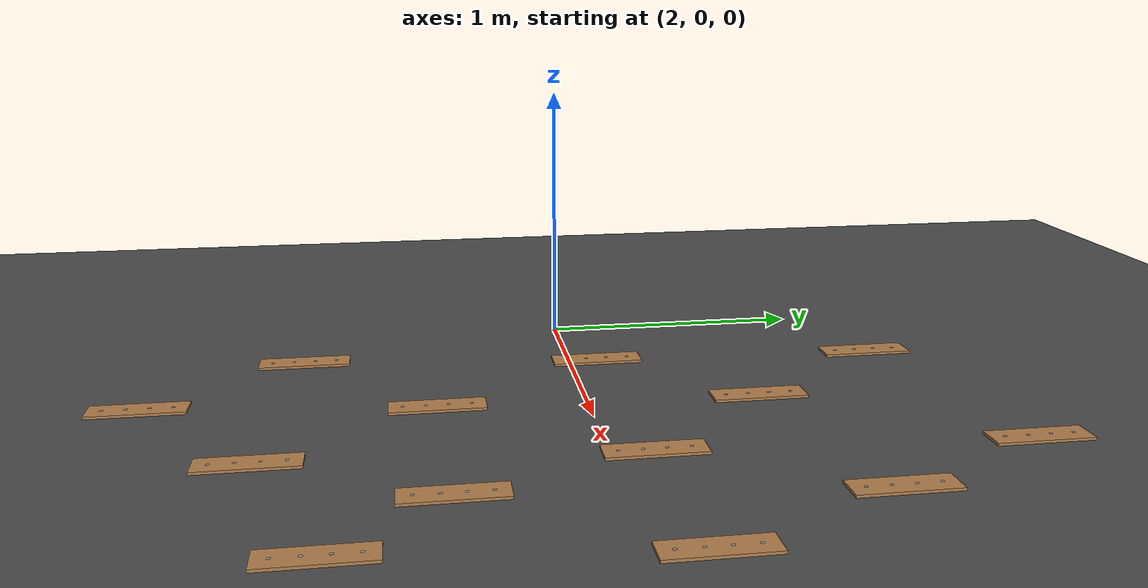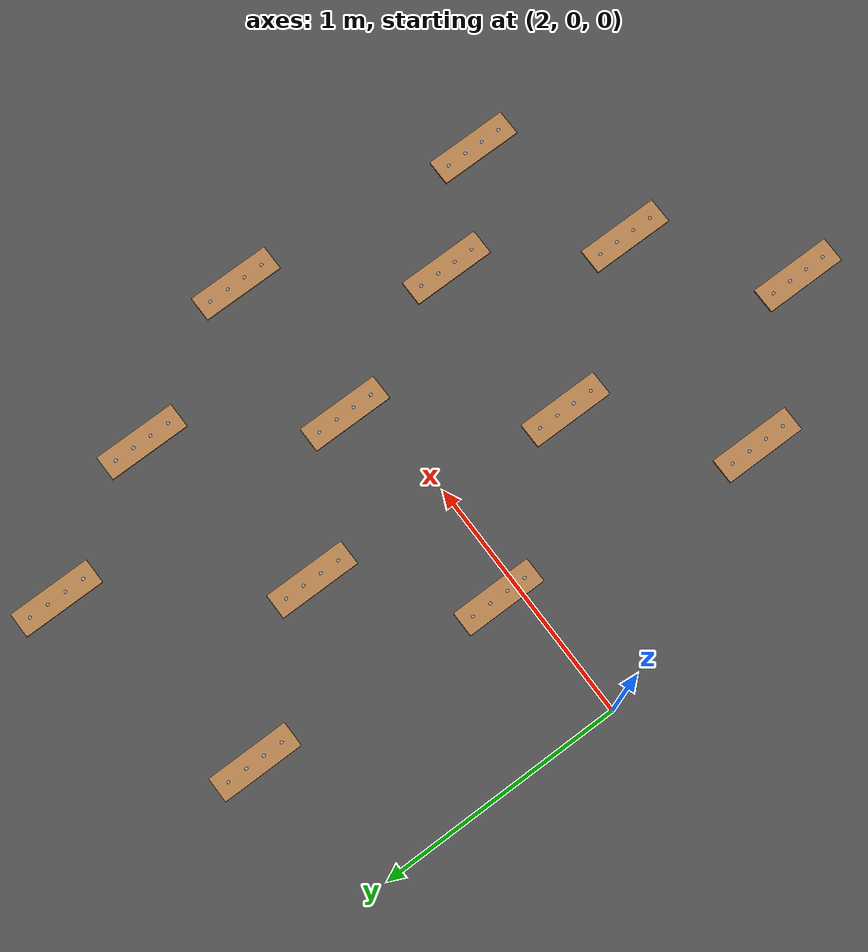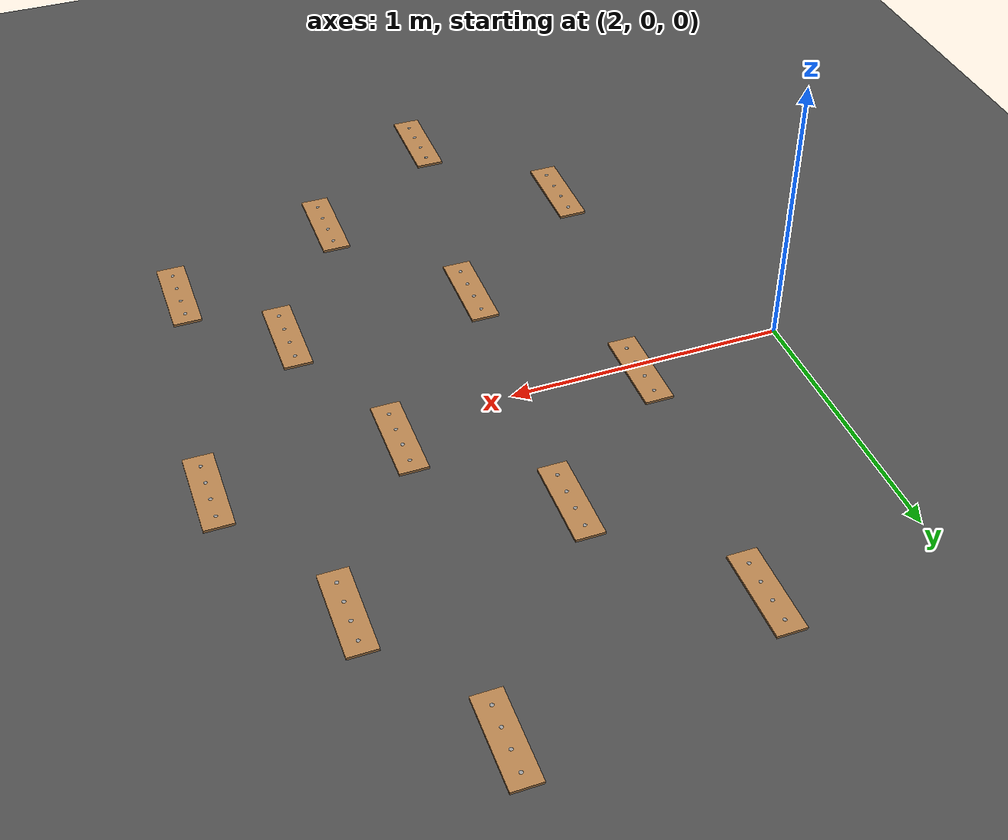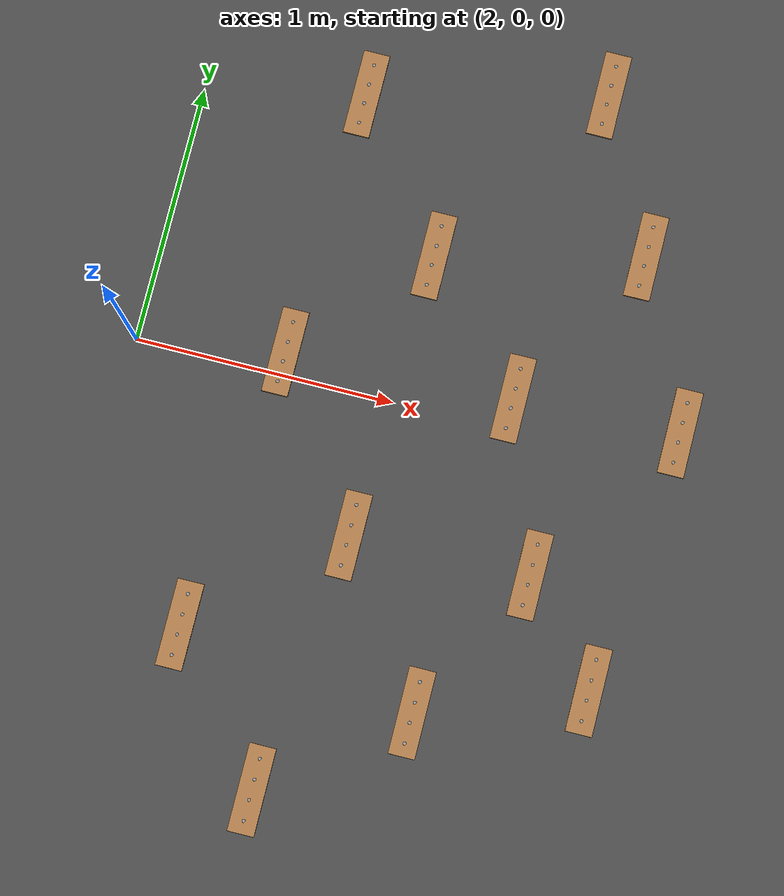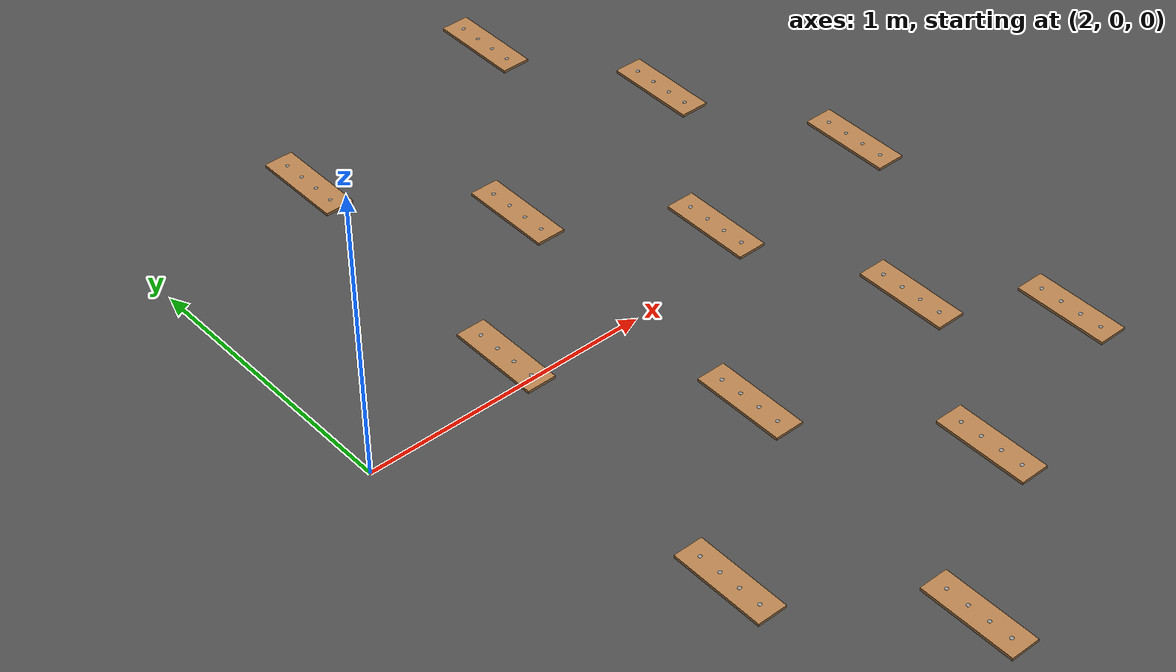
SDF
<sdf version="1.7">
 <world name="default">
  <model name="ground_plane">
   <static>1</static>
   <link name="link">
    <collision name="collision">
     <geometry><plane><normal>0 0 1</normal><size>100 100</size></plane></geometry>
     <surface>
      <contact><collide_bitmask>65535</collide_bitmask></contact>
      <friction><ode><mu>100</mu><mu2>50</mu2></ode></friction>
     </surface>
    </collision>
    <visual name="visual">
     <cast_shadows>0</cast_shadows>
     <geometry><plane><normal>0 0 1</normal><size>100 100</size></plane></geometry>
     <material>
      <script><uri>file://media/materials/scripts/gazebo.material</uri><name>Gazebo/Grey</name></script>
     </material>
    </visual>
   </link>
  </model>
  <model name="asphalt_plane">
   <static>1</static>
   <link name="link">
    <collision name="collision"><geometry><box><size>20 20 0.1</size></box></geometry></collision>
    <visual name="visual">
     <cast_shadows>0</cast_shadows>
     <geometry><box><size>20 20 0.1</size></box></geometry>
     <material>
      <script>
       <uri>model://asphalt_plane/materials/scripts</uri>
       <uri>model://asphalt_plane/materials/textures</uri>
       <name>vrc/asphalt</name>
      </script>
     </material>
    </visual>
   </link>
   <pose>7.06721 0.007221 0 0 -0 0</pose>
  </model>
  <model name="wooden_board_11">
   <link name="base">
    <pose>0 0 0.00523 0 -0 0</pose>
    <inertial>
     <mass>0.2765</mass>
     <inertia>
      <ixx>0.0025148</ixx>
      <ixy>0</ixy>
      <ixz>0</ixz>
      <iyy>0.00024037</iyy>
      <iyz>0</iyz>
      <izz>0.00275013</izz>
     </inertia>
    </inertial>
    <collision name="collision">
     <geometry><box><size>0.1016 0.3302 0.01046</size></box></geometry>
     <surface>
      <contact>
       <poissons_ratio>0.347</poissons_ratio>
       <elastic_modulus>8.8e+09</elastic_modulus>
       <ode><kp>100000</kp><kd>100</kd><max_vel>100</max_vel><min_depth>0.001</min_depth></ode>
      </contact>
      <friction>
       <torsional>
        <coefficient>1</coefficient>
        <use_patch_radius>0</use_patch_radius>
        <surface_radius>0.01</surface_radius>
       </torsional>
      </friction>
     </surface>
    </collision>
    <visual name="visual">
     <geometry><box><size>0.1016 0.3302 0.01046</size></box></geometry>
     <material>
      <script><uri>file://media/materials/scripts/gazebo.material</uri><name>Gazebo/Wood</name></script>
     </material>
    </visual>
    <visual name="tee_nut_1">
     <pose>0 -0.116 0 0 -0 0</pose>
     <geometry><cylinder><radius>0.00635</radius><length>0.0105646</length></cylinder></geometry>
     <material>
      <script><uri>file://media/materials/scripts/gazebo.material</uri><name>Gazebo/Grey</name></script>
     </material>
    </visual>
    <visual name="tee_nut_2">
     <pose>0 -0.038 0 0 -0 0</pose>
     <geometry><cylinder><radius>0.00635</radius><length>0.0105646</length></cylinder></geometry>
     <material>
      <script><uri>file://media/materials/scripts/gazebo.material</uri><name>Gazebo/Grey</name></script>
     </material>
    </visual>
    <visual name="tee_nut_3">
     <pose>0 0.038 0 0 -0 0</pose>
     <geometry><cylinder><radius>0.00635</radius><length>0.0105646</length></cylinder></geometry>
     <material>
      <script><uri>file://media/materials/scripts/gazebo.material</uri><name>Gazebo/Grey</name></script>
     </material>
    </visual>
    <visual name="tee_nut_4">
     <pose>0 0.116 0 0 -0 0</pose>
     <geometry><cylinder><radius>0.00635</radius><length>0.0105646</length></cylinder></geometry>
     <material>
      <script><uri>file://media/materials/scripts/gazebo.material</uri><name>Gazebo/Grey</name></script>
     </material>
    </visual>
   </link>
   <pose>2.44177 -1.00347 0.048993 0 -0 6e-05</pose>
  </model>
  <model name="wooden_board_12">
   <link name="base">
    <pose>0 0 0.00523 0 -0 0</pose>
    <inertial>
     <mass>0.2765</mass>
     <inertia>
      <ixx>0.0025148</ixx>
      <ixy>0</ixy>
      <ixz>0</ixz>
      <iyy>0.00024037</iyy>
      <iyz>0</iyz>
      <izz>0.00275013</izz>
     </inertia>
    </inertial>
    <collision name="collision">
     <geometry><box><size>0.1016 0.3302 0.01046</size></box></geometry>
     <surface>
      <contact>
       <poissons_ratio>0.347</poissons_ratio>
       <elastic_modulus>8.8e+09</elastic_modulus>
       <ode><kp>100000</kp><kd>100</kd><max_vel>100</max_vel><min_depth>0.001</min_depth></ode>
      </contact>
      <friction>
       <torsional>
        <coefficient>1</coefficient>
        <use_patch_radius>0</use_patch_radius>
        <surface_radius>0.01</surface_radius>
       </torsional>
      </friction>
     </surface>
    </collision>
    <visual name="visual">
     <geometry><box><size>0.1016 0.3302 0.01046</size></box></geometry>
     <material>
      <script><uri>file://media/materials/scripts/gazebo.material</uri><name>Gazebo/Wood</name></script>
     </material>
    </visual>
    <visual name="tee_nut_1">
     <pose>0 -0.116 0 0 -0 0</pose>
     <geometry><cylinder><radius>0.00635</radius><length>0.0105646</length></cylinder></geometry>
     <material>
      <script><uri>file://media/materials/scripts/gazebo.material</uri><name>Gazebo/Grey</name></script>
     </material>
    </visual>
    <visual name="tee_nut_2">
     <pose>0 -0.038 0 0 -0 0</pose>
     <geometry><cylinder><radius>0.00635</radius><length>0.0105646</length></cylinder></geometry>
     <material>
      <script><uri>file://media/materials/scripts/gazebo.material</uri><name>Gazebo/Grey</name></script>
     </material>
    </visual>
    <visual name="tee_nut_3">
     <pose>0 0.038 0 0 -0 0</pose>
     <geometry><cylinder><radius>0.00635</radius><length>0.0105646</length></cylinder></geometry>
     <material>
      <script><uri>file://media/materials/scripts/gazebo.material</uri><name>Gazebo/Grey</name></script>
     </material>
    </visual>
    <visual name="tee_nut_4">
     <pose>0 0.116 0 0 -0 0</pose>
     <geometry><cylinder><radius>0.00635</radius><length>0.0105646</length></cylinder></geometry>
     <material>
      <script><uri>file://media/materials/scripts/gazebo.material</uri><name>Gazebo/Grey</name></script>
     </material>
    </visual>
   </link>
   <pose>2.56206 0.082427 0.048993 0 -0 6e-05</pose>
  </model>
  <model name="wooden_board_13">
   <link name="base">
    <pose>0 0 0.00523 0 -0 0</pose>
    <inertial>
     <mass>0.2765</mass>
     <inertia>
      <ixx>0.0025148</ixx>
      <ixy>0</ixy>
      <ixz>0</ixz>
      <iyy>0.00024037</iyy>
      <iyz>0</iyz>
      <izz>0.00275013</izz>
     </inertia>
    </inertial>
    <collision name="collision">
     <geometry><box><size>0.1016 0.3302 0.01046</size></box></geometry>
     <surface>
      <contact>
       <poissons_ratio>0.347</poissons_ratio>
       <elastic_modulus>8.8e+09</elastic_modulus>
       <ode><kp>100000</kp><kd>100</kd><max_vel>100</max_vel><min_depth>0.001</min_depth></ode>
      </contact>
      <friction>
       <torsional>
        <coefficient>1</coefficient>
        <use_patch_radius>0</use_patch_radius>
        <surface_radius>0.01</surface_radius>
       </torsional>
      </friction>
     </surface>
    </collision>
    <visual name="visual">
     <geometry><box><size>0.1016 0.3302 0.01046</size></box></geometry>
     <material>
      <script><uri>file://media/materials/scripts/gazebo.material</uri><name>Gazebo/Wood</name></script>
     </material>
    </visual>
    <visual name="tee_nut_1">
     <pose>0 -0.116 0 0 -0 0</pose>
     <geometry><cylinder><radius>0.00635</radius><length>0.0105646</length></cylinder></geometry>
     <material>
      <script><uri>file://media/materials/scripts/gazebo.material</uri><name>Gazebo/Grey</name></script>
     </material>
    </visual>
    <visual name="tee_nut_2">
     <pose>0 -0.038 0 0 -0 0</pose>
     <geometry><cylinder><radius>0.00635</radius><length>0.0105646</length></cylinder></geometry>
     <material>
      <script><uri>file://media/materials/scripts/gazebo.material</uri><name>Gazebo/Grey</name></script>
     </material>
    </visual>
    <visual name="tee_nut_3">
     <pose>0 0.038 0 0 -0 0</pose>
     <geometry><cylinder><radius>0.00635</radius><length>0.0105646</length></cylinder></geometry>
     <material>
      <script><uri>file://media/materials/scripts/gazebo.material</uri><name>Gazebo/Grey</name></script>
     </material>
    </visual>
    <visual name="tee_nut_4">
     <pose>0 0.116 0 0 -0 0</pose>
     <geometry><cylinder><radius>0.00635</radius><length>0.0105646</length></cylinder></geometry>
     <material>
      <script><uri>file://media/materials/scripts/gazebo.material</uri><name>Gazebo/Grey</name></script>
     </material>
    </visual>
   </link>
   <pose>2.6106 1.12317 0.048993 0 -0 6e-05</pose>
  </model>
  <model name="wooden_board_15">
   <link name="base">
    <pose>0 0 0.00523 0 -0 0</pose>
    <inertial>
     <mass>0.2765</mass>
     <inertia>
      <ixx>0.0025148</ixx>
      <ixy>0</ixy>
      <ixz>0</ixz>
      <iyy>0.00024037</iyy>
      <iyz>0</iyz>
      <izz>0.00275013</izz>
     </inertia>
    </inertial>
    <collision name="collision">
     <geometry><box><size>0.1016 0.3302 0.01046</size></box></geometry>
     <surface>
      <contact>
       <poissons_ratio>0.347</poissons_ratio>
       <elastic_modulus>8.8e+09</elastic_modulus>
       <ode><kp>100000</kp><kd>100</kd><max_vel>100</max_vel><min_depth>0.001</min_depth></ode>
      </contact>
      <friction>
       <torsional>
        <coefficient>1</coefficient>
        <use_patch_radius>0</use_patch_radius>
        <surface_radius>0.01</surface_radius>
       </torsional>
      </friction>
     </surface>
    </collision>
    <visual name="visual">
     <geometry><box><size>0.1016 0.3302 0.01046</size></box></geometry>
     <material>
      <script><uri>file://media/materials/scripts/gazebo.material</uri><name>Gazebo/Wood</name></script>
     </material>
    </visual>
    <visual name="tee_nut_1">
     <pose>0 -0.116 0 0 -0 0</pose>
     <geometry><cylinder><radius>0.00635</radius><length>0.0105646</length></cylinder></geometry>
     <material>
      <script><uri>file://media/materials/scripts/gazebo.material</uri><name>Gazebo/Grey</name></script>
     </material>
    </visual>
    <visual name="tee_nut_2">
     <pose>0 -0.038 0 0 -0 0</pose>
     <geometry><cylinder><radius>0.00635</radius><length>0.0105646</length></cylinder></geometry>
     <material>
      <script><uri>file://media/materials/scripts/gazebo.material</uri><name>Gazebo/Grey</name></script>
     </material>
    </visual>
    <visual name="tee_nut_3">
     <pose>0 0.038 0 0 -0 0</pose>
     <geometry><cylinder><radius>0.00635</radius><length>0.0105646</length></cylinder></geometry>
     <material>
      <script><uri>file://media/materials/scripts/gazebo.material</uri><name>Gazebo/Grey</name></script>
     </material>
    </visual>
    <visual name="tee_nut_4">
     <pose>0 0.116 0 0 -0 0</pose>
     <geometry><cylinder><radius>0.00635</radius><length>0.0105646</length></cylinder></geometry>
     <material>
      <script><uri>file://media/materials/scripts/gazebo.material</uri><name>Gazebo/Grey</name></script>
     </material>
    </visual>
   </link>
   <pose>2.96482 -0.529446 0.048993 0 -0 6e-05</pose>
  </model>
  <model name="wooden_board_16">
   <link name="base">
    <pose>0 0 0.00523 0 -0 0</pose>
    <inertial>
     <mass>0.2765</mass>
     <inertia>
      <ixx>0.0025148</ixx>
      <ixy>0</ixy>
      <ixz>0</ixz>
      <iyy>0.00024037</iyy>
      <iyz>0</iyz>
      <izz>0.00275013</izz>
     </inertia>
    </inertial>
    <collision name="collision">
     <geometry><box><size>0.1016 0.3302 0.01046</size></box></geometry>
     <surface>
      <contact>
       <poissons_ratio>0.347</poissons_ratio>
       <elastic_modulus>8.8e+09</elastic_modulus>
       <ode><kp>100000</kp><kd>100</kd><max_vel>100</max_vel><min_depth>0.001</min_depth></ode>
      </contact>
      <friction>
       <torsional>
        <coefficient>1</coefficient>
        <use_patch_radius>0</use_patch_radius>
        <surface_radius>0.01</surface_radius>
       </torsional>
      </friction>
     </surface>
    </collision>
    <visual name="visual">
     <geometry><box><size>0.1016 0.3302 0.01046</size></box></geometry>
     <material>
      <script><uri>file://media/materials/scripts/gazebo.material</uri><name>Gazebo/Wood</name></script>
     </material>
    </visual>
    <visual name="tee_nut_1">
     <pose>0 -0.116 0 0 -0 0</pose>
     <geometry><cylinder><radius>0.00635</radius><length>0.0105646</length></cylinder></geometry>
     <material>
      <script><uri>file://media/materials/scripts/gazebo.material</uri><name>Gazebo/Grey</name></script>
     </material>
    </visual>
    <visual name="tee_nut_2">
     <pose>0 -0.038 0 0 -0 0</pose>
     <geometry><cylinder><radius>0.00635</radius><length>0.0105646</length></cylinder></geometry>
     <material>
      <script><uri>file://media/materials/scripts/gazebo.material</uri><name>Gazebo/Grey</name></script>
     </material>
    </visual>
    <visual name="tee_nut_3">
     <pose>0 0.038 0 0 -0 0</pose>
     <geometry><cylinder><radius>0.00635</radius><length>0.0105646</length></cylinder></geometry>
     <material>
      <script><uri>file://media/materials/scripts/gazebo.material</uri><name>Gazebo/Grey</name></script>
     </material>
    </visual>
    <visual name="tee_nut_4">
     <pose>0 0.116 0 0 -0 0</pose>
     <geometry><cylinder><radius>0.00635</radius><length>0.0105646</length></cylinder></geometry>
     <material>
      <script><uri>file://media/materials/scripts/gazebo.material</uri><name>Gazebo/Grey</name></script>
     </material>
    </visual>
   </link>
   <pose>3.01399 0.576444 0.048993 0 -0 6e-05</pose>
  </model>
  <model name="wooden_board_17">
   <link name="base">
    <pose>0 0 0.00523 0 -0 0</pose>
    <inertial>
     <mass>0.2765</mass>
     <inertia>
      <ixx>0.0025148</ixx>
      <ixy>0</ixy>
      <ixz>0</ixz>
      <iyy>0.00024037</iyy>
      <iyz>0</iyz>
      <izz>0.00275013</izz>
     </inertia>
    </inertial>
    <collision name="collision">
     <geometry><box><size>0.1016 0.3302 0.01046</size></box></geometry>
     <surface>
      <contact>
       <poissons_ratio>0.347</poissons_ratio>
       <elastic_modulus>8.8e+09</elastic_modulus>
       <ode><kp>100000</kp><kd>100</kd><max_vel>100</max_vel><min_depth>0.001</min_depth></ode>
      </contact>
      <friction>
       <torsional>
        <coefficient>1</coefficient>
        <use_patch_radius>0</use_patch_radius>
        <surface_radius>0.01</surface_radius>
       </torsional>
      </friction>
     </surface>
    </collision>
    <visual name="visual">
     <geometry><box><size>0.1016 0.3302 0.01046</size></box></geometry>
     <material>
      <script><uri>file://media/materials/scripts/gazebo.material</uri><name>Gazebo/Wood</name></script>
     </material>
    </visual>
    <visual name="tee_nut_1">
     <pose>0 -0.116 0 0 -0 0</pose>
     <geometry><cylinder><radius>0.00635</radius><length>0.0105646</length></cylinder></geometry>
     <material>
      <script><uri>file://media/materials/scripts/gazebo.material</uri><name>Gazebo/Grey</name></script>
     </material>
    </visual>
    <visual name="tee_nut_2">
     <pose>0 -0.038 0 0 -0 0</pose>
     <geometry><cylinder><radius>0.00635</radius><length>0.0105646</length></cylinder></geometry>
     <material>
      <script><uri>file://media/materials/scripts/gazebo.material</uri><name>Gazebo/Grey</name></script>
     </material>
    </visual>
    <visual name="tee_nut_3">
     <pose>0 0.038 0 0 -0 0</pose>
     <geometry><cylinder><radius>0.00635</radius><length>0.0105646</length></cylinder></geometry>
     <material>
      <script><uri>file://media/materials/scripts/gazebo.material</uri><name>Gazebo/Grey</name></script>
     </material>
    </visual>
    <visual name="tee_nut_4">
     <pose>0 0.116 0 0 -0 0</pose>
     <geometry><cylinder><radius>0.00635</radius><length>0.0105646</length></cylinder></geometry>
     <material>
      <script><uri>file://media/materials/scripts/gazebo.material</uri><name>Gazebo/Grey</name></script>
     </material>
    </visual>
   </link>
   <pose>2.85314 -1.52235 0.048993 0 -0 6e-05</pose>
  </model>
  <model name="wooden_board_18">
   <link name="base">
    <pose>0 0 0.00523 0 -0 0</pose>
    <inertial>
     <mass>0.2765</mass>
     <inertia>
      <ixx>0.0025148</ixx>
      <ixy>0</ixy>
      <ixz>0</ixz>
      <iyy>0.00024037</iyy>
      <iyz>0</iyz>
      <izz>0.00275013</izz>
     </inertia>
    </inertial>
    <collision name="collision">
     <geometry><box><size>0.1016 0.3302 0.01046</size></box></geometry>
     <surface>
      <contact>
       <poissons_ratio>0.347</poissons_ratio>
       <elastic_modulus>8.8e+09</elastic_modulus>
       <ode><kp>100000</kp><kd>100</kd><max_vel>100</max_vel><min_depth>0.001</min_depth></ode>
      </contact>
      <friction>
       <torsional>
        <coefficient>1</coefficient>
        <use_patch_radius>0</use_patch_radius>
        <surface_radius>0.01</surface_radius>
       </torsional>
      </friction>
     </surface>
    </collision>
    <visual name="visual">
     <geometry><box><size>0.1016 0.3302 0.01046</size></box></geometry>
     <material>
      <script><uri>file://media/materials/scripts/gazebo.material</uri><name>Gazebo/Wood</name></script>
     </material>
    </visual>
    <visual name="tee_nut_1">
     <pose>0 -0.116 0 0 -0 0</pose>
     <geometry><cylinder><radius>0.00635</radius><length>0.0105646</length></cylinder></geometry>
     <material>
      <script><uri>file://media/materials/scripts/gazebo.material</uri><name>Gazebo/Grey</name></script>
     </material>
    </visual>
    <visual name="tee_nut_2">
     <pose>0 -0.038 0 0 -0 0</pose>
     <geometry><cylinder><radius>0.00635</radius><length>0.0105646</length></cylinder></geometry>
     <material>
      <script><uri>file://media/materials/scripts/gazebo.material</uri><name>Gazebo/Grey</name></script>
     </material>
    </visual>
    <visual name="tee_nut_3">
     <pose>0 0.038 0 0 -0 0</pose>
     <geometry><cylinder><radius>0.00635</radius><length>0.0105646</length></cylinder></geometry>
     <material>
      <script><uri>file://media/materials/scripts/gazebo.material</uri><name>Gazebo/Grey</name></script>
     </material>
    </visual>
    <visual name="tee_nut_4">
     <pose>0 0.116 0 0 -0 0</pose>
     <geometry><cylinder><radius>0.00635</radius><length>0.0105646</length></cylinder></geometry>
     <material>
      <script><uri>file://media/materials/scripts/gazebo.material</uri><name>Gazebo/Grey</name></script>
     </material>
    </visual>
   </link>
   <pose>3.4343 0.11886 0.048993 0 -0 6e-05</pose>
  </model>
  <model name="wooden_board_19">
   <link name="base">
    <pose>0 0 0.00523 0 -0 0</pose>
    <inertial>
     <mass>0.2765</mass>
     <inertia>
      <ixx>0.0025148</ixx>
      <ixy>0</ixy>
      <ixz>0</ixz>
      <iyy>0.00024037</iyy>
      <iyz>0</iyz>
      <izz>0.00275013</izz>
     </inertia>
    </inertial>
    <collision name="collision">
     <geometry><box><size>0.1016 0.3302 0.01046</size></box></geometry>
     <surface>
      <contact>
       <poissons_ratio>0.347</poissons_ratio>
       <elastic_modulus>8.8e+09</elastic_modulus>
       <ode><kp>100000</kp><kd>100</kd><max_vel>100</max_vel><min_depth>0.001</min_depth></ode>
      </contact>
      <friction>
       <torsional>
        <coefficient>1</coefficient>
        <use_patch_radius>0</use_patch_radius>
        <surface_radius>0.01</surface_radius>
       </torsional>
      </friction>
     </surface>
    </collision>
    <visual name="visual">
     <geometry><box><size>0.1016 0.3302 0.01046</size></box></geometry>
     <material>
      <script><uri>file://media/materials/scripts/gazebo.material</uri><name>Gazebo/Wood</name></script>
     </material>
    </visual>
    <visual name="tee_nut_1">
     <pose>0 -0.116 0 0 -0 0</pose>
     <geometry><cylinder><radius>0.00635</radius><length>0.0105646</length></cylinder></geometry>
     <material>
      <script><uri>file://media/materials/scripts/gazebo.material</uri><name>Gazebo/Grey</name></script>
     </material>
    </visual>
    <visual name="tee_nut_2">
     <pose>0 -0.038 0 0 -0 0</pose>
     <geometry><cylinder><radius>0.00635</radius><length>0.0105646</length></cylinder></geometry>
     <material>
      <script><uri>file://media/materials/scripts/gazebo.material</uri><name>Gazebo/Grey</name></script>
     </material>
    </visual>
    <visual name="tee_nut_3">
     <pose>0 0.038 0 0 -0 0</pose>
     <geometry><cylinder><radius>0.00635</radius><length>0.0105646</length></cylinder></geometry>
     <material>
      <script><uri>file://media/materials/scripts/gazebo.material</uri><name>Gazebo/Grey</name></script>
     </material>
    </visual>
    <visual name="tee_nut_4">
     <pose>0 0.116 0 0 -0 0</pose>
     <geometry><cylinder><radius>0.00635</radius><length>0.0105646</length></cylinder></geometry>
     <material>
      <script><uri>file://media/materials/scripts/gazebo.material</uri><name>Gazebo/Grey</name></script>
     </material>
    </visual>
   </link>
   <pose>3.35401 -1.10744 0.048993 0 -0 6e-05</pose>
  </model>
  <model name="wooden_board_20">
   <link name="base">
    <pose>0 0 0.00523 0 -0 0</pose>
    <inertial>
     <mass>0.2765</mass>
     <inertia>
      <ixx>0.0025148</ixx>
      <ixy>0</ixy>
      <ixz>0</ixz>
      <iyy>0.00024037</iyy>
      <iyz>0</iyz>
      <izz>0.00275013</izz>
     </inertia>
    </inertial>
    <collision name="collision">
     <geometry><box><size>0.1016 0.3302 0.01046</size></box></geometry>
     <surface>
      <contact>
       <poissons_ratio>0.347</poissons_ratio>
       <elastic_modulus>8.8e+09</elastic_modulus>
       <ode><kp>100000</kp><kd>100</kd><max_vel>100</max_vel><min_depth>0.001</min_depth></ode>
      </contact>
      <friction>
       <torsional>
        <coefficient>1</coefficient>
        <use_patch_radius>0</use_patch_radius>
        <surface_radius>0.01</surface_radius>
       </torsional>
      </friction>
     </surface>
    </collision>
    <visual name="visual">
     <geometry><box><size>0.1016 0.3302 0.01046</size></box></geometry>
     <material>
      <script><uri>file://media/materials/scripts/gazebo.material</uri><name>Gazebo/Wood</name></script>
     </material>
    </visual>
    <visual name="tee_nut_1">
     <pose>0 -0.116 0 0 -0 0</pose>
     <geometry><cylinder><radius>0.00635</radius><length>0.0105646</length></cylinder></geometry>
     <material>
      <script><uri>file://media/materials/scripts/gazebo.material</uri><name>Gazebo/Grey</name></script>
     </material>
    </visual>
    <visual name="tee_nut_2">
     <pose>0 -0.038 0 0 -0 0</pose>
     <geometry><cylinder><radius>0.00635</radius><length>0.0105646</length></cylinder></geometry>
     <material>
      <script><uri>file://media/materials/scripts/gazebo.material</uri><name>Gazebo/Grey</name></script>
     </material>
    </visual>
    <visual name="tee_nut_3">
     <pose>0 0.038 0 0 -0 0</pose>
     <geometry><cylinder><radius>0.00635</radius><length>0.0105646</length></cylinder></geometry>
     <material>
      <script><uri>file://media/materials/scripts/gazebo.material</uri><name>Gazebo/Grey</name></script>
     </material>
    </visual>
    <visual name="tee_nut_4">
     <pose>0 0.116 0 0 -0 0</pose>
     <geometry><cylinder><radius>0.00635</radius><length>0.0105646</length></cylinder></geometry>
     <material>
      <script><uri>file://media/materials/scripts/gazebo.material</uri><name>Gazebo/Grey</name></script>
     </material>
    </visual>
   </link>
   <pose>3.50827 1.34486 0.048993 0 -0 6e-05</pose>
  </model>
  <model name="wooden_board_21">
   <link name="base">
    <pose>0 0 0.00523 0 -0 0</pose>
    <inertial>
     <mass>0.2765</mass>
     <inertia>
      <ixx>0.0025148</ixx>
      <ixy>0</ixy>
      <ixz>0</ixz>
      <iyy>0.00024037</iyy>
      <iyz>0</iyz>
      <izz>0.00275013</izz>
     </inertia>
    </inertial>
    <collision name="collision">
     <geometry><box><size>0.1016 0.3302 0.01046</size></box></geometry>
     <surface>
      <contact>
       <poissons_ratio>0.347</poissons_ratio>
       <elastic_modulus>8.8e+09</elastic_modulus>
       <ode><kp>100000</kp><kd>100</kd><max_vel>100</max_vel><min_depth>0.001</min_depth></ode>
      </contact>
      <friction>
       <torsional>
        <coefficient>1</coefficient>
        <use_patch_radius>0</use_patch_radius>
        <surface_radius>0.01</surface_radius>
       </torsional>
      </friction>
     </surface>
    </collision>
    <visual name="visual">
     <geometry><box><size>0.1016 0.3302 0.01046</size></box></geometry>
     <material>
      <script><uri>file://media/materials/scripts/gazebo.material</uri><name>Gazebo/Wood</name></script>
     </material>
    </visual>
    <visual name="tee_nut_1">
     <pose>0 -0.116 0 0 -0 0</pose>
     <geometry><cylinder><radius>0.00635</radius><length>0.0105646</length></cylinder></geometry>
     <material>
      <script><uri>file://media/materials/scripts/gazebo.material</uri><name>Gazebo/Grey</name></script>
     </material>
    </visual>
    <visual name="tee_nut_2">
     <pose>0 -0.038 0 0 -0 0</pose>
     <geometry><cylinder><radius>0.00635</radius><length>0.0105646</length></cylinder></geometry>
     <material>
      <script><uri>file://media/materials/scripts/gazebo.material</uri><name>Gazebo/Grey</name></script>
     </material>
    </visual>
    <visual name="tee_nut_3">
     <pose>0 0.038 0 0 -0 0</pose>
     <geometry><cylinder><radius>0.00635</radius><length>0.0105646</length></cylinder></geometry>
     <material>
      <script><uri>file://media/materials/scripts/gazebo.material</uri><name>Gazebo/Grey</name></script>
     </material>
    </visual>
    <visual name="tee_nut_4">
     <pose>0 0.116 0 0 -0 0</pose>
     <geometry><cylinder><radius>0.00635</radius><length>0.0105646</length></cylinder></geometry>
     <material>
      <script><uri>file://media/materials/scripts/gazebo.material</uri><name>Gazebo/Grey</name></script>
     </material>
    </visual>
   </link>
   <pose>3.65368 -0.508264 0.048993 0 -0 6e-05</pose>
  </model>
  <model name="wooden_board_22">
   <link name="base">
    <pose>0 0 0.00523 0 -0 0</pose>
    <inertial>
     <mass>0.2765</mass>
     <inertia>
      <ixx>0.0025148</ixx>
      <ixy>0</ixy>
      <ixz>0</ixz>
      <iyy>0.00024037</iyy>
      <iyz>0</iyz>
      <izz>0.00275013</izz>
     </inertia>
    </inertial>
    <collision name="collision">
     <geometry><box><size>0.1016 0.3302 0.01046</size></box></geometry>
     <surface>
      <contact>
       <poissons_ratio>0.347</poissons_ratio>
       <elastic_modulus>8.8e+09</elastic_modulus>
       <ode><kp>100000</kp><kd>100</kd><max_vel>100</max_vel><min_depth>0.001</min_depth></ode>
      </contact>
      <friction>
       <torsional>
        <coefficient>1</coefficient>
        <use_patch_radius>0</use_patch_radius>
        <surface_radius>0.01</surface_radius>
       </torsional>
      </friction>
     </surface>
    </collision>
    <visual name="visual">
     <geometry><box><size>0.1016 0.3302 0.01046</size></box></geometry>
     <material>
      <script><uri>file://media/materials/scripts/gazebo.material</uri><name>Gazebo/Wood</name></script>
     </material>
    </visual>
    <visual name="tee_nut_1">
     <pose>0 -0.116 0 0 -0 0</pose>
     <geometry><cylinder><radius>0.00635</radius><length>0.0105646</length></cylinder></geometry>
     <material>
      <script><uri>file://media/materials/scripts/gazebo.material</uri><name>Gazebo/Grey</name></script>
     </material>
    </visual>
    <visual name="tee_nut_2">
     <pose>0 -0.038 0 0 -0 0</pose>
     <geometry><cylinder><radius>0.00635</radius><length>0.0105646</length></cylinder></geometry>
     <material>
      <script><uri>file://media/materials/scripts/gazebo.material</uri><name>Gazebo/Grey</name></script>
     </material>
    </visual>
    <visual name="tee_nut_3">
     <pose>0 0.038 0 0 -0 0</pose>
     <geometry><cylinder><radius>0.00635</radius><length>0.0105646</length></cylinder></geometry>
     <material>
      <script><uri>file://media/materials/scripts/gazebo.material</uri><name>Gazebo/Grey</name></script>
     </material>
    </visual>
    <visual name="tee_nut_4">
     <pose>0 0.116 0 0 -0 0</pose>
     <geometry><cylinder><radius>0.00635</radius><length>0.0105646</length></cylinder></geometry>
     <material>
      <script><uri>file://media/materials/scripts/gazebo.material</uri><name>Gazebo/Grey</name></script>
     </material>
    </visual>
   </link>
   <pose>3.79162 0.768718 0.048993 0 -0 6e-05</pose>
  </model>
  <model name="wooden_board_23">
   <link name="base">
    <pose>0 0 0.00523 0 -0 0</pose>
    <inertial>
     <mass>0.2765</mass>
     <inertia>
      <ixx>0.0025148</ixx>
      <ixy>0</ixy>
      <ixz>0</ixz>
      <iyy>0.00024037</iyy>
      <iyz>0</iyz>
      <izz>0.00275013</izz>
     </inertia>
    </inertial>
    <collision name="collision">
     <geometry><box><size>0.1016 0.3302 0.01046</size></box></geometry>
     <surface>
      <contact>
       <poissons_ratio>0.347</poissons_ratio>
       <elastic_modulus>8.8e+09</elastic_modulus>
       <ode><kp>100000</kp><kd>100</kd><max_vel>100</max_vel><min_depth>0.001</min_depth></ode>
      </contact>
      <friction>
       <torsional>
        <coefficient>1</coefficient>
        <use_patch_radius>0</use_patch_radius>
        <surface_radius>0.01</surface_radius>
       </torsional>
      </friction>
     </surface>
    </collision>
    <visual name="visual">
     <geometry><box><size>0.1016 0.3302 0.01046</size></box></geometry>
     <material>
      <script><uri>file://media/materials/scripts/gazebo.material</uri><name>Gazebo/Wood</name></script>
     </material>
    </visual>
    <visual name="tee_nut_1">
     <pose>0 -0.116 0 0 -0 0</pose>
     <geometry><cylinder><radius>0.00635</radius><length>0.0105646</length></cylinder></geometry>
     <material>
      <script><uri>file://media/materials/scripts/gazebo.material</uri><name>Gazebo/Grey</name></script>
     </material>
    </visual>
    <visual name="tee_nut_2">
     <pose>0 -0.038 0 0 -0 0</pose>
     <geometry><cylinder><radius>0.00635</radius><length>0.0105646</length></cylinder></geometry>
     <material>
      <script><uri>file://media/materials/scripts/gazebo.material</uri><name>Gazebo/Grey</name></script>
     </material>
    </visual>
    <visual name="tee_nut_3">
     <pose>0 0.038 0 0 -0 0</pose>
     <geometry><cylinder><radius>0.00635</radius><length>0.0105646</length></cylinder></geometry>
     <material>
      <script><uri>file://media/materials/scripts/gazebo.material</uri><name>Gazebo/Grey</name></script>
     </material>
    </visual>
    <visual name="tee_nut_4">
     <pose>0 0.116 0 0 -0 0</pose>
     <geometry><cylinder><radius>0.00635</radius><length>0.0105646</length></cylinder></geometry>
     <material>
      <script><uri>file://media/materials/scripts/gazebo.material</uri><name>Gazebo/Grey</name></script>
     </material>
    </visual>
   </link>
   <pose>4.07087 0.145626 0.048993 0 -0 6e-05</pose>
  </model>
  <model name="wooden_board_24">
   <link name="base">
    <pose>0 0 0.00523 0 -0 0</pose>
    <inertial>
     <mass>0.2765</mass>
     <inertia>
      <ixx>0.0025148</ixx>
      <ixy>0</ixy>
      <ixz>0</ixz>
      <iyy>0.00024037</iyy>
      <iyz>0</iyz>
      <izz>0.00275013</izz>
     </inertia>
    </inertial>
    <collision name="collision">
     <geometry><box><size>0.1016 0.3302 0.01046</size></box></geometry>
     <surface>
      <contact>
       <poissons_ratio>0.347</poissons_ratio>
       <elastic_modulus>8.8e+09</elastic_modulus>
       <ode><kp>100000</kp><kd>100</kd><max_vel>100</max_vel><min_depth>0.001</min_depth></ode>
      </contact>
      <friction>
       <torsional>
        <coefficient>1</coefficient>
        <use_patch_radius>0</use_patch_radius>
        <surface_radius>0.01</surface_radius>
       </torsional>
      </friction>
     </surface>
    </collision>
    <visual name="visual">
     <geometry><box><size>0.1016 0.3302 0.01046</size></box></geometry>
     <material>
      <script><uri>file://media/materials/scripts/gazebo.material</uri><name>Gazebo/Wood</name></script>
     </material>
    </visual>
    <visual name="tee_nut_1">
     <pose>0 -0.116 0 0 -0 0</pose>
     <geometry><cylinder><radius>0.00635</radius><length>0.0105646</length></cylinder></geometry>
     <material>
      <script><uri>file://media/materials/scripts/gazebo.material</uri><name>Gazebo/Grey</name></script>
     </material>
    </visual>
    <visual name="tee_nut_2">
     <pose>0 -0.038 0 0 -0 0</pose>
     <geometry><cylinder><radius>0.00635</radius><length>0.0105646</length></cylinder></geometry>
     <material>
      <script><uri>file://media/materials/scripts/gazebo.material</uri><name>Gazebo/Grey</name></script>
     </material>
    </visual>
    <visual name="tee_nut_3">
     <pose>0 0.038 0 0 -0 0</pose>
     <geometry><cylinder><radius>0.00635</radius><length>0.0105646</length></cylinder></geometry>
     <material>
      <script><uri>file://media/materials/scripts/gazebo.material</uri><name>Gazebo/Grey</name></script>
     </material>
    </visual>
    <visual name="tee_nut_4">
     <pose>0 0.116 0 0 -0 0</pose>
     <geometry><cylinder><radius>0.00635</radius><length>0.0105646</length></cylinder></geometry>
     <material>
      <script><uri>file://media/materials/scripts/gazebo.material</uri><name>Gazebo/Grey</name></script>
     </material>
    </visual>
   </link>
   <pose>3.9647 -0.869156 0.048993 0 -0 6e-05</pose>
  </model>
 </world>
</sdf>
